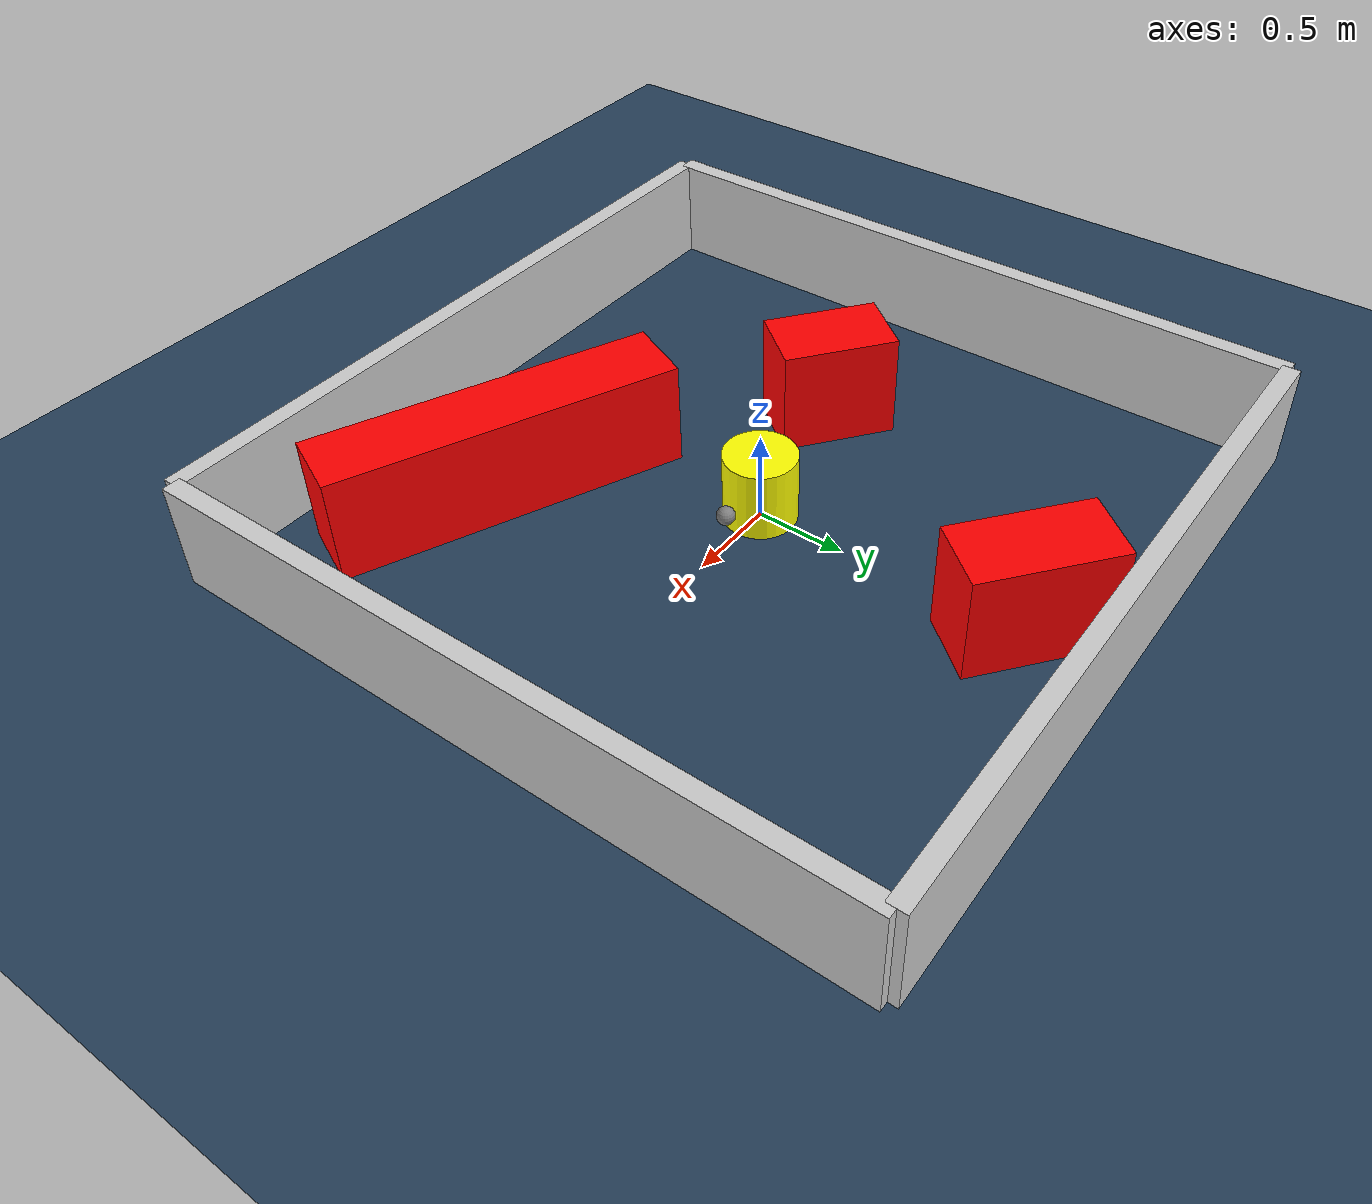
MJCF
<?xml version="1.0" ?>
<mujoco model="generated_environment">
  <option timestep="0.01" integrator="RK4" cone="elliptic"/>
  <default>
    <geom density="1"/>
  </default>
  <asset>
    <texture builtin="gradient" height="3072" rgb1="0.3 0.5 0.7" rgb2="0 0 0" type="skybox" width="512"/>
    <texture builtin="checker" height="300" mark="edge" markrgb="0.8 0.8 0.8" name="groundplane" rgb1="0.2 0.3 0.4" rgb2="0.1 0.2 0.3" type="2d" width="300"/>
    <material name="groundplane" reflectance="0.2" texrepeat="5 5" texture="groundplane" texuniform="true"/>
    <material name="robot" rgba="0.0 1.0 0.0 1"/>
  </asset>
  <worldbody>
    <light dir="0 0 -1" directional="true" pos="0 0 1.5"/>
    <geom condim="4" friction="1.0 0.005 0.001" material="groundplane" name="floor" size="0 0 0.05" type="plane"/>
    <body name="walls">
      <geom name="wall_1" condim="4" pos="-2.0 0.0 0.3" rgba="0.800000011920929 0.800000011920929 0.800000011920929 1.0" size="0.05 2.0 0.3" type="box"/>
      <geom name="wall_2" condim="4" pos="2.0 0.0 0.3" rgba="0.800000011920929 0.800000011920929 0.800000011920929 1.0" size="0.05 2.0 0.3" type="box"/>
      <geom name="wall_3" condim="4" pos="0.0 -2.0 0.3" rgba="0.800000011920929 0.800000011920929 0.800000011920929 1.0" size="2.0 0.05 0.3" type="box"/>
      <geom name="wall_4" condim="4" pos="0.0 2.0 0.3" rgba="0.800000011920929 0.800000011920929 0.800000011920929 1.0" size="2.0 0.05 0.3" type="box"/>
    </body>
    <body name="robot">
      <joint name="joint_x" type="slide" pos="0 0 0" axis="1 0 0"/>
      <joint name="joint_y" type="slide" pos="0 0 0" axis="0 1 0"/>
      <geom name="robot" type="sphere" pos="0.3 0.0 0.2" size="0.05" mass="5." friction="1.0 0.005 0.0001" condim="4" rgba="0.5 0.5 0.5 1.0"/>
      <site name="sensor_ball"/>
    </body>
    <body name="obstacle_movable_1">
      <geom name="obstacle_movable_1" condim="4" pos="0.0 0.0 0.2" euler="0 0 0.0" friction="1.0 0.005 0.001" rgba="1.0 1.0 0.0 1.0" size="0.2 0.2 0.0" type="cylinder" mass="0.1"/>
      <joint type="free"/>
    </body>
    <body name="obstacle_2_static">
      <geom name="obstacle_2_static" condim="4" pos="-0.89489565221677 -0.1654421034793394 0.3" euler="0 0 321.74804227044206" friction="1.0 0.005 0.001" rgba="1 0 0 1" size="0.320773061250958 0.2 0.3" type="box"/>
    </body>
    <body name="obstacle_3_static">
      <geom name="obstacle_3_static" condim="4" pos="-0.012497518441518585 1.5242178110895364 0.3" euler="0 0 140.5597002205601" friction="1.0 0.005 0.001" rgba="1 0 0 1" size="0.3919119921896326 0.2 0.3" type="box"/>
    </body>
    <body name="obstacle_4_static">
      <geom name="obstacle_4_static" condim="4" pos="0.6573774845859277 -1.1947504819781019 0.3" euler="0 0 156.16091720818838" friction="1.0 0.005 0.001" rgba="1 0 0 1" size="0.9554244644001153 0.2 0.3" type="box"/>
    </body>
  </worldbody>
  <actuator>
    <motor name="actuator_x" joint="joint_x" gear="1" ctrlrange="-1 1"/>
    <motor name="actuator_y" joint="joint_y" gear="1" ctrlrange="-1 1"/>
  </actuator>
</mujoco>
